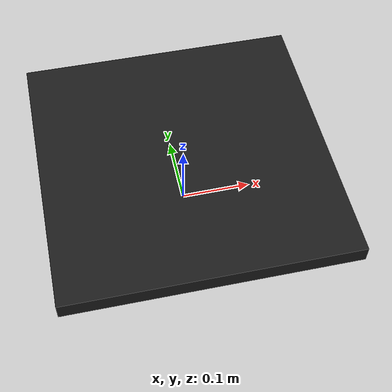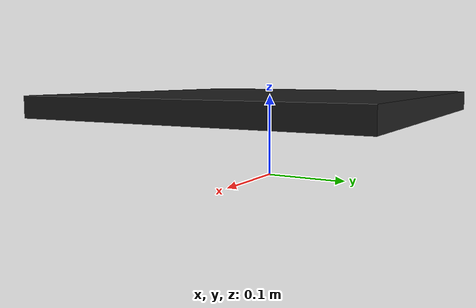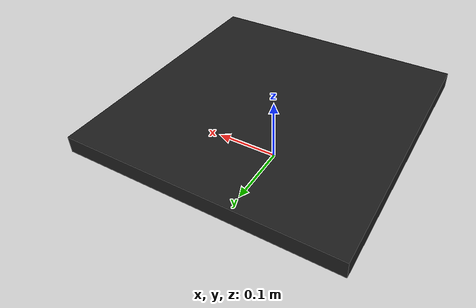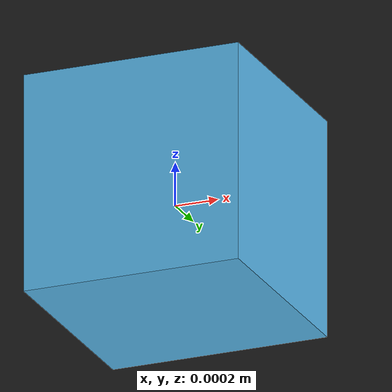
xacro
<?xml version="1.0"?>
<robot xmlns:xacro='http://www.ros.org/wiki/xacro' name='chassis'>

  <!-- Chassis Properties -->
  <xacro:property name='base_length' value='0.4'/>
  <xacro:property name='base_width' value='0.4'/>
  <xacro:property name='base_height' value='0.025'/>
  <xacro:property name='base_link_joint_offset' value='0.09'/>

  <!-- Box Inertial -->
  <xacro:macro name = 'box_inertial' params = 'mass x y z'>
    <inertial>
      <mass value = '${mass}'/>
      <inertia ixx = '${mass / 12 * (z*z + y*y)}' ixy = '0.0' ixz = '0.0'
               iyy = '${mass / 12 * (x*x + z*z)}' iyz = '0.0'
               izz = '${mass / 12 * (y*y + z*z)}' />
    </inertial>
  </xacro:macro>

  <!-- Base Link -->
  <link name='base_link'>
    <visual>
      <geometry>
        <box size ='${base_length} ${base_width} ${base_height}'/>
      </geometry>
    </visual>

    <collision>
      <geometry>
        <box size ='${base_length} ${base_width} ${base_height}'/>
      </geometry>
    </collision>

    <xacro:box_inertial mass='1.0' x='${base_length}' y='${base_width}' z='${base_height}'/>
  </link>

  <!-- Base Footprint -->
  <link name='base_footprint'>
    <origin xyz='0 0 0' rpy='0 0 0'/>
    <visual>
      <geometry>
        <box size='0.001 0.001 0.001'/>
      </geometry>
    </visual>
  </link>

  <joint name='base_link_joint' type ='fixed'>
    <origin xyz = '0 0 ${base_link_joint_offset}' rpy='0 0 0'/>
    <parent link='base_footprint'/>
    <child link='base_link'/>
  </joint>

  <gazebo reference='base_link'>
    <material>Gazebo/Black</material>
   </gazebo>

</robot>
